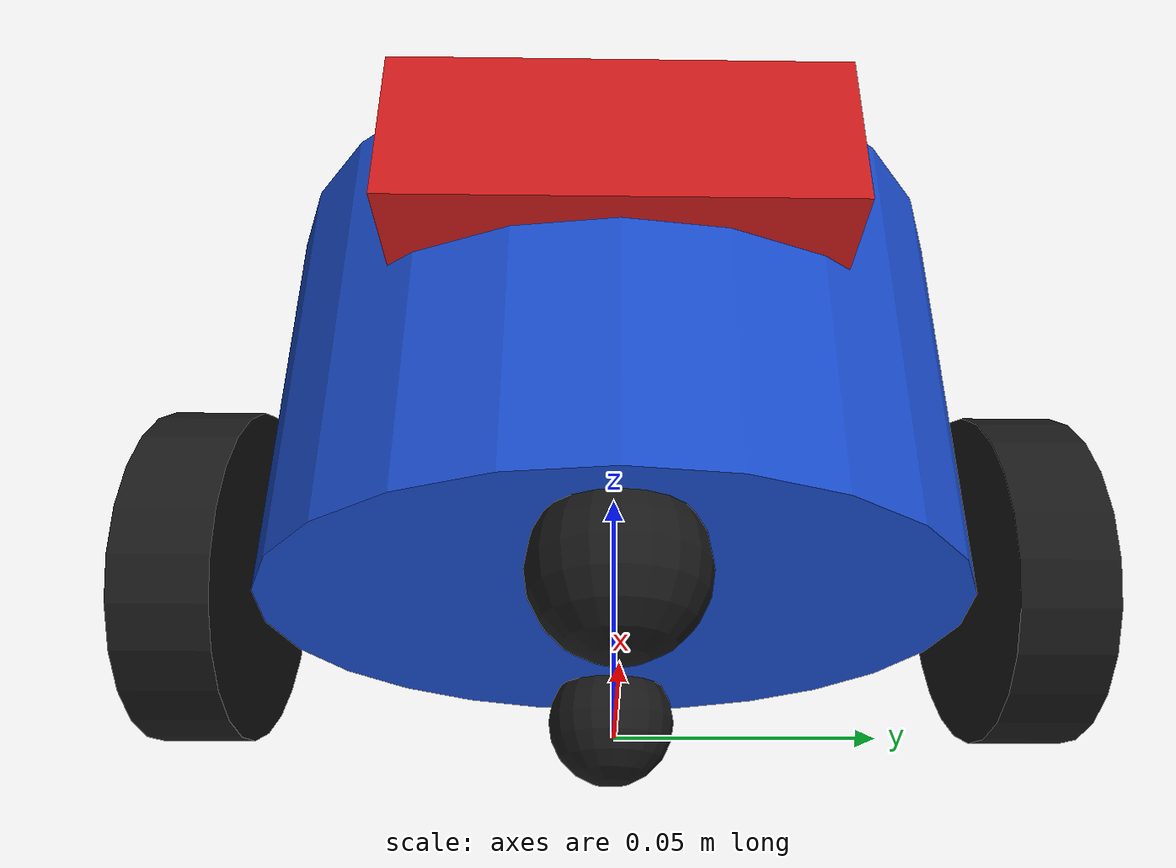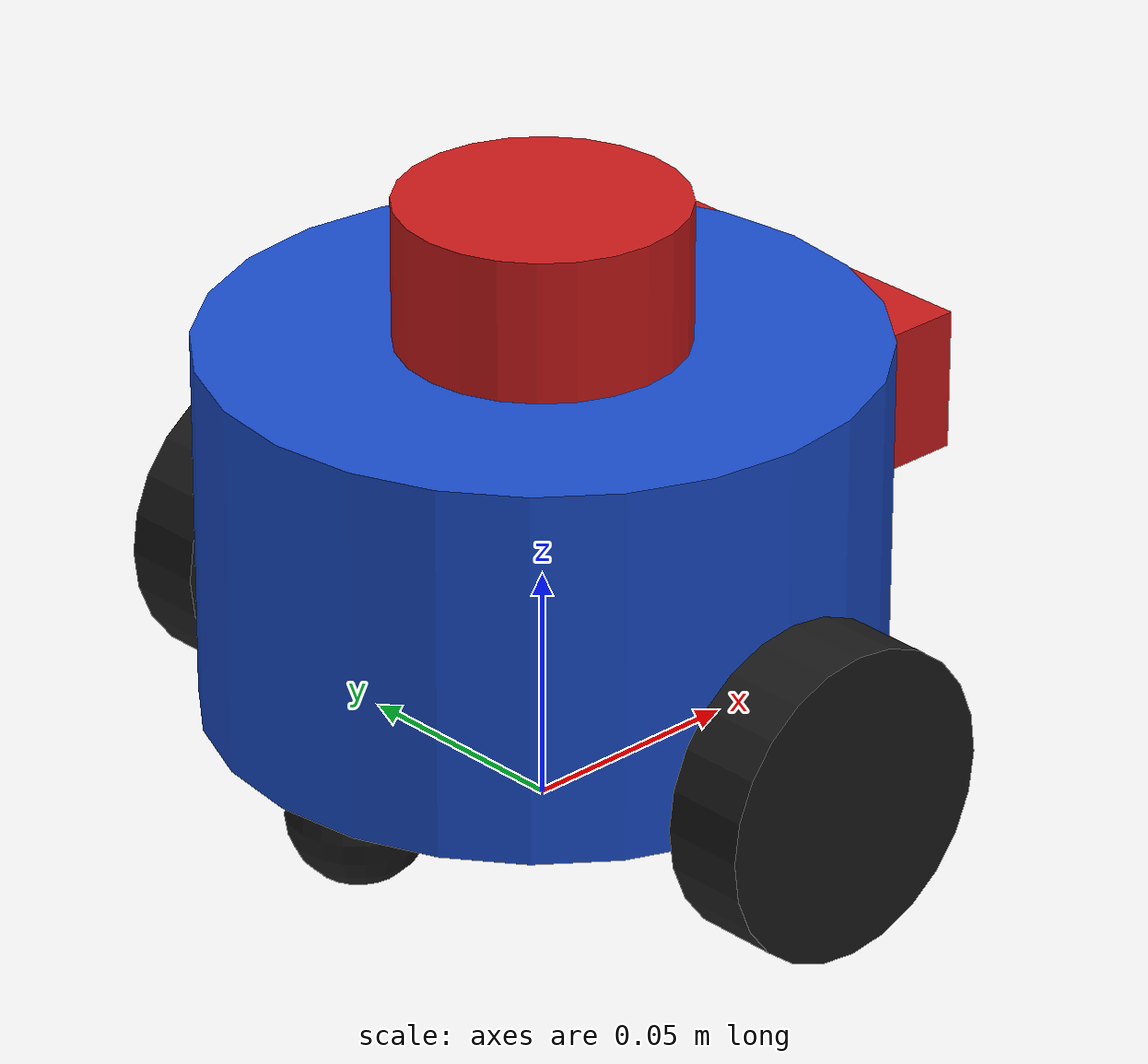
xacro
<?xml version="1.0"?>

<robot name="mybot" xmlns:xacro="http://www.ros.org/wiki/xacro">

    <material name="blue">
    <color rgba="0.1 0.3 0.8 1.0"/>
    </material>

    <material name="black">
    <color rgba="0.1 0.1 0.1 1.0"/>
    </material>

    <material name="red">
        <color rgba="0.8 0.1 0.1 1.0"/>
    </material>

    <xacro:property name="chassis_radius" value="0.07" />
    <xacro:property name="chassis_height" value="0.08" />
    <xacro:property name="wheel_radius" value="0.033" />
    <xacro:property name="wheel_width" value="0.018" />
    <xacro:property name="wheel_separation" value="0.160" />
    <xacro:property name="caster_radius" value="0.015" />
    <xacro:property name="lidar_radius" value="0.03" />
    <xacro:property name="lidar_height" value="0.03" />

    <xacro:property name="chassis_mass" value="0.8" />
    <xacro:property name="wheel_mass" value="0.05" />
    <xacro:property name="caster_mass" value="0.02" />
    <xacro:property name="lidar_mass" value="0.1" />

    <xacro:property name="cam_x" value="0.03"/>
    <xacro:property name="cam_y" value="0.08"/>
    <xacro:property name="cam_z" value="0.03"/>
    <xacro:property name="cam_mass" value="0.02"/>

    <xacro:macro name="wheel" params="name side">
        <link name="${name}_wheel">
            <visual>
                <geometry>
                    <cylinder radius="${wheel_radius}" length="${wheel_width}"/>
                </geometry>
            <material name="black"></material>
            </visual>

            <collision>
                <geometry>
                    <cylinder radius="${wheel_radius}" length="${wheel_width}"/>
                </geometry>
            </collision>

            <inertial>
            <mass value="${wheel_mass}"/>
            <inertia ixx="${wheel_mass * (3*wheel_radius*wheel_radius + wheel_width*wheel_width) / 12}" ixy="0" ixz="0"
                     iyy="${wheel_mass * (3*wheel_radius*wheel_radius + wheel_width*wheel_width) / 12}" iyz="0"
                     izz="${wheel_mass * wheel_radius * wheel_radius / 2}"/>
            </inertial>
        </link>

        <joint name="${name}_wheel_joint" type="continuous">
            <parent link="base_link"/>
            <child link="${name}_wheel"/>
            <axis xyz="0 0 1"/>
            <origin xyz="0  ${side * wheel_separation / 2}  0" rpy="${-pi/2} 0 0"/>
        </joint>
    </xacro:macro>

    <link name="base_footprint"> </link>

    <link name="base_link">
        <visual>
            <geometry>
                <cylinder radius="${chassis_radius}" length="${chassis_height}"/>
            </geometry>
            <origin xyz="0 0 0.03" rpy="0 0 0"/>
            <material name="blue"></material>
        </visual>

        <collision>
            <geometry>
                <cylinder radius="${chassis_radius}" length="${chassis_height}"/>
            </geometry>
            <origin xyz="0 0 0.03" rpy="0 0 0"/>
        </collision>

        <inertial>
             <origin xyz="0 0 0.03" rpy="0 0 0"/>
             <mass value="${chassis_mass}"/>
             <inertia ixx="${chassis_mass * (3*chassis_radius*chassis_radius + chassis_height*chassis_height) / 12}" ixy="0" ixz="0"
             iyy="${chassis_mass * (3*chassis_radius*chassis_radius + chassis_height*chassis_height) / 12}" iyz="0"
             izz="${chassis_mass * chassis_radius * chassis_radius / 2}"/>
        </inertial>
    </link>

    <xacro:wheel name="left" side="1"/>
    <xacro:wheel name="right" side="-1"/>

    <link name="caster_wheel">
        <visual>
            <geometry>
                <sphere radius="${caster_radius}"/>
            </geometry>
            <origin xyz="0 0 0" rpy="0 0 0"/>
            <material name="black"></material>
        </visual>

        <collision>
            <geometry>
                <sphere radius="${caster_radius}"/>
            </geometry>
        </collision>

       <inertial>
             <mass value="${caster_mass}"/>
             <inertia ixx="${0.4 * caster_mass * caster_radius * caster_radius}" ixy="0" ixz="0"
             iyy="${0.4 * caster_mass * caster_radius * caster_radius}" iyz="0"
             izz="${0.4 * caster_mass * caster_radius * caster_radius}"/>
        </inertial>
    </link>

    <link name="lidar_link">
        <visual>
            <geometry>
                <cylinder radius="${lidar_radius}" length="${lidar_height}"/>
            </geometry>
            <origin xyz="0 0 0" rpy="0 0 0"/>
            <material name="red"></material>
        </visual>
        <collision>
            <geometry>
                <cylinder radius="${lidar_radius}" length="${lidar_height}"/>
            </geometry>
        </collision>
        <inertial>
         <mass value="${lidar_mass}"/>
        <inertia ixx="${lidar_mass * (3*lidar_radius*lidar_radius + lidar_height*lidar_height) / 12}" ixy="0" ixz="0"
             iyy="${lidar_mass * (3*lidar_radius*lidar_radius + lidar_height*lidar_height) / 12}" iyz="0"
             izz="${lidar_mass * lidar_radius * lidar_radius / 2}"/>
        </inertial>
    </link>

        <link name="caster_front">
        <visual>
            <geometry>
                <sphere radius="${caster_radius}"/>
            </geometry>
            <origin xyz="0 0 0" rpy="0 0 0"/>
            <material name="black"></material>
        </visual>

        <collision>
            <geometry>
                <sphere radius="${caster_radius}"/>
            </geometry>
        </collision>

        <inertial>
            <mass value="${caster_mass}"/>
            <inertia ixx="${0.4 * caster_mass * caster_radius * caster_radius}" ixy="0" ixz="0"
                     iyy="${0.4 * caster_mass * caster_radius * caster_radius}" iyz="0"
                     izz="${0.4 * caster_mass * caster_radius * caster_radius}"/>
        </inertial>
    </link>

        <link name="imu_link">
        <visual>
            <geometry><box size="0.02 0.02 0.01"/></geometry>
        </visual>
        <collision>
            <geometry><box size="0.02 0.02 0.01"/></geometry>
        </collision>
        <inertial>
            <mass value="0.01"/>
            <inertia ixx="1e-6" ixy="0" ixz="0" iyy="1e-6" iyz="0" izz="1e-6"/>
        </inertial>
    </link>

    <joint name="imu_joint" type="fixed">
        <parent link="base_link"/>
        <child link="imu_link"/>
        <origin xyz="0 0 0.03" rpy="0 0 0"/>
    </joint>

    <!-- JOINT -->

    <joint name="base_joint" type="fixed">
        <parent link="base_footprint"/>
        <child link="base_link"/>
        <origin xyz="0 0 ${wheel_radius}" rpy="0 0 0"/>
    </joint>

    <joint name="caster_wheel_joint" type="fixed">
        <parent link="base_link"/>
        <child link="caster_wheel"/>
        <origin xyz="-0.05 0 ${caster_radius - wheel_radius}" rpy="0 0 0"/>
    </joint>

    <joint name="lidar_joint" type="fixed">
        <parent link="base_link"/>
        <child link="lidar_link"/>
        <origin xyz="0 0 0.085" rpy="0 0 0"/>
    </joint>

    <joint name="caster_front_joint" type="fixed">
        <parent link="base_link"/>
        <child link="caster_front"/>
        <origin xyz="0.05 0 ${caster_radius - wheel_radius}" rpy="0 0 0"/>
    </joint>

      <link name="camera_link">
    <visual>
      <geometry>
        <box size="${cam_x} ${cam_y} ${cam_z}"/>
      </geometry>
      <material name="red"/>
    </visual>
    <collision>
      <geometry>
        <box size="${cam_x} ${cam_y} ${cam_z}"/>
      </geometry>
    </collision>
    <inertial>
      <mass value="${cam_mass}"/>
      <inertia ixx="${cam_mass/12*(cam_y*cam_y+cam_z*cam_z)}" ixy="0" ixz="0"
               iyy="${cam_mass/12*(cam_x*cam_x+cam_z*cam_z)}" iyz="0"
               izz="${cam_mass/12*(cam_x*cam_x+cam_y*cam_y)}"/>
    </inertial>
  </link>

  <joint name="camera_joint" type="fixed">
    <parent link="base_link"/>
    <child link="camera_link"/>
    <origin xyz="0.06 0 0.05" rpy="0 0 0"/>
  </joint>

        <!-- ===== Gazebo ===== -->
    <gazebo>
        <plugin filename="gz-sim-diff-drive-system" name="gz::sim::systems::DiffDrive">
            <left_joint>left_wheel_joint</left_joint>
            <right_joint>right_wheel_joint</right_joint>
            <wheel_separation>${wheel_separation}</wheel_separation>
            <wheel_radius>${wheel_radius}</wheel_radius>
            <topic>cmd_vel</topic>
            <odom_topic>odom</odom_topic>
            <frame_id>odom</frame_id>
            <child_frame_id>base_footprint</child_frame_id>
            <odom_publisher_frequency>30</odom_publisher_frequency>
        </plugin>

        <plugin filename="gz-sim-joint-state-publisher-system" name="gz::sim::systems::JointStatePublisher">
            <topic>joint_states</topic>
        </plugin>
    </gazebo>

    <!-- The caster must slide, not grip -->
    <gazebo reference="caster_wheel">
        <mu1>0.001</mu1>
        <mu2>0.001</mu2>
    </gazebo>

    <gazebo reference="lidar_link">
        <sensor name="lidar" type="gpu_lidar">
            <pose>0 0 0 0 0 0</pose>
            <topic>scan</topic>
            <update_rate>10</update_rate>
            <always_on>true</always_on>
            <visualize>false</visualize>
            <gz_frame_id>lidar_link</gz_frame_id>
            <lidar>
                <scan>
                    <horizontal>
                        <samples>360</samples>
                        <resolution>1</resolution>
                        <min_angle>-3.14159</min_angle>
                        <max_angle>3.14159</max_angle>
                    </horizontal>
                </scan>
                <range>
                    <min>0.12</min>
                    <max>3.5</max>
                    <resolution>0.015</resolution>
                </range>
            </lidar>
        </sensor>
    </gazebo>

        <gazebo reference="imu_link">
        <sensor name="imu_sensor" type="imu">
            <always_on>true</always_on>
            <update_rate>100</update_rate>
            <topic>imu</topic>
            <gz_frame_id>imu_link</gz_frame_id>
            <imu>
                <angular_velocity>
                    <z><noise type="gaussian"><mean>0.0</mean><stddev>0.0005</stddev></noise></z>
                </angular_velocity>
                <linear_acceleration>
                    <x><noise type="gaussian"><mean>0.0</mean><stddev>0.01</stddev></noise></x>
                    <y><noise type="gaussian"><mean>0.0</mean><stddev>0.01</stddev></noise></y>
                </linear_acceleration>
            </imu>
        </sensor>
    </gazebo>

      <gazebo reference="camera_link">
    <sensor name="camera_sensor" type="camera">
      <always_on>true</always_on>
      <update_rate>15</update_rate>
      <topic>camera/image_raw</topic>
      <gz_frame_id>camera_link</gz_frame_id>
      <camera>
        <horizontal_fov>1.047</horizontal_fov>
        <image>
          <width>640</width>
          <height>480</height>
          <format>R8G8B8</format>
        </image>
        <clip>
          <near>0.05</near>
          <far>10</far>
        </clip>
      </camera>
    </sensor>
    </gazebo>

    <gazebo reference="caster_front">
        <mu1>0.001</mu1>
        <mu2>0.001</mu2>
    </gazebo>

</robot>
